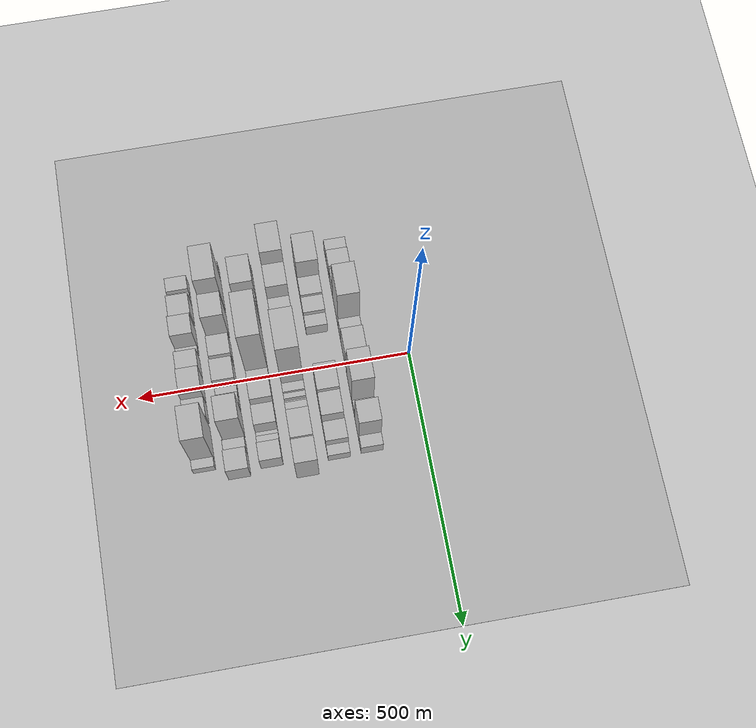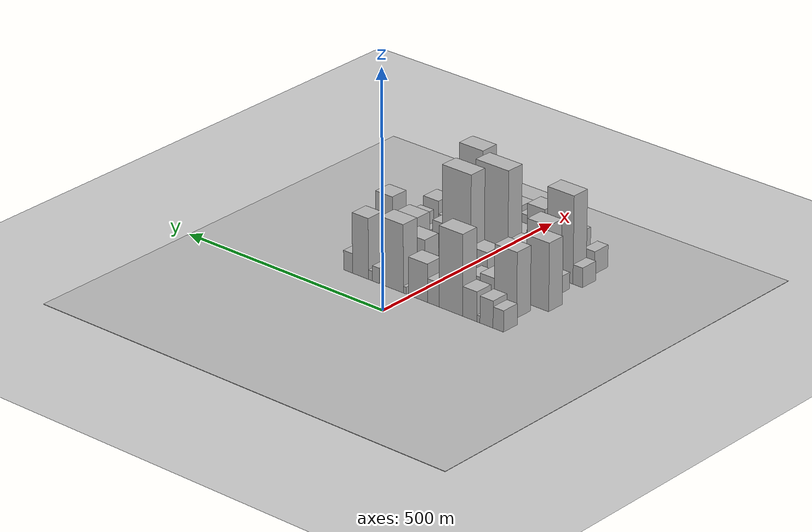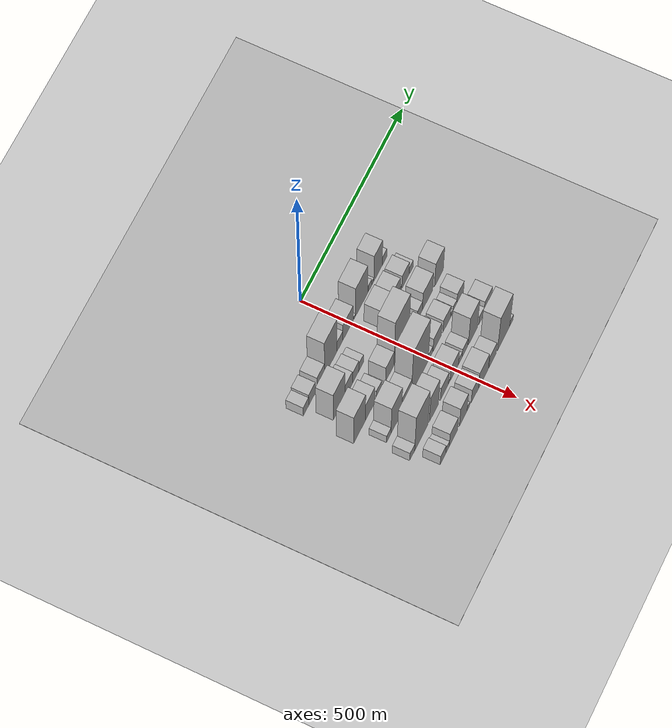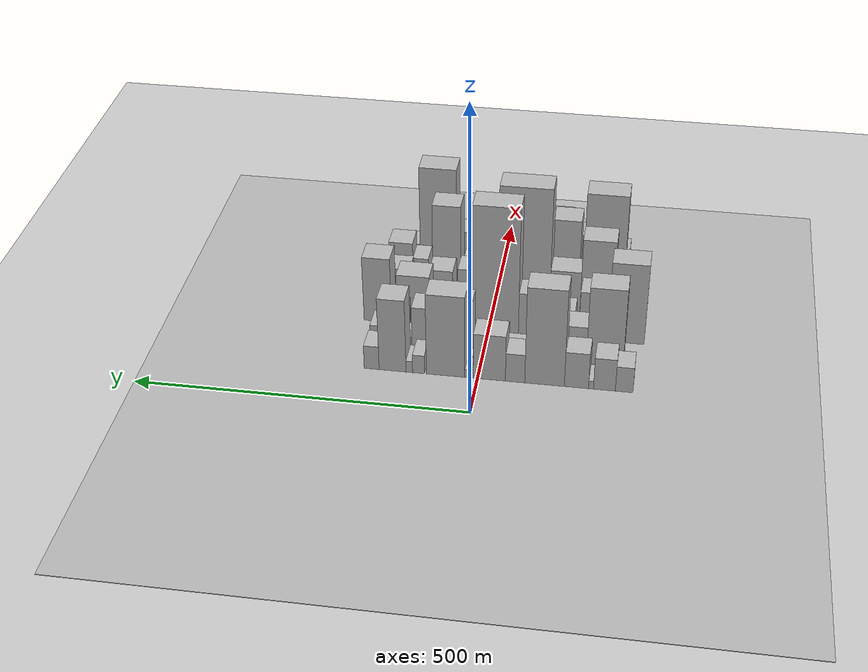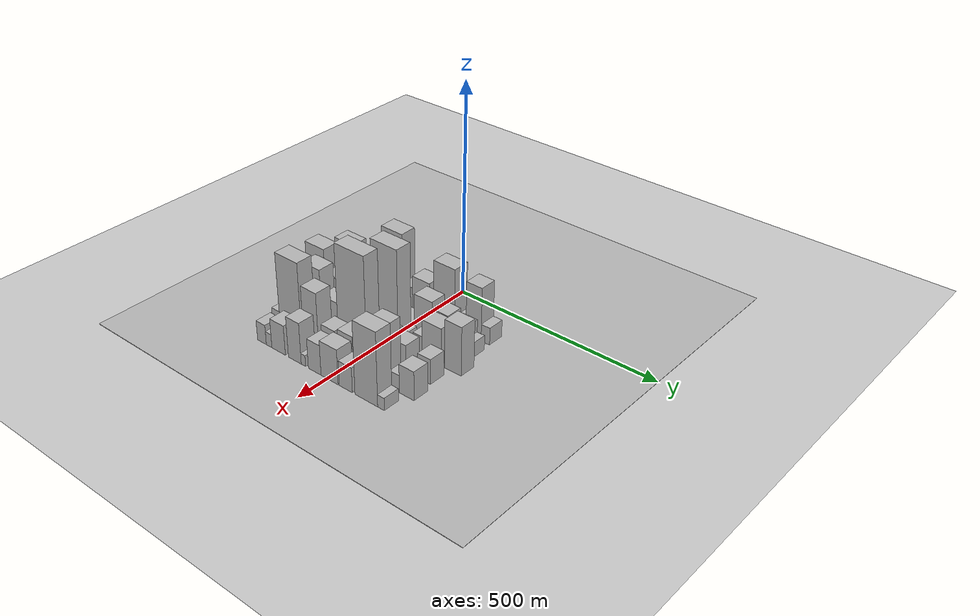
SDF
<sdf version="1.6">
 <world name="default">
  <include><name>ground_plane_1</name><uri>model://HANNAS_ground_plane</uri></include>
  <include>
   <name>ground_plane_2</name>
   <uri>model://HANNAS_ground_plane</uri>
   <pose>100 0 0  0 0 0</pose>
  </include>
  <model name="building_21">
   <static>1</static>
   <pose>100.0000 -216.5910 0 0.000000 0.000000 0.000000</pose>
   <link name="link">
    <pose>0 0 22.50 0 0 0</pose>
    <collision name="collision"><geometry><box><size>40.0000 25.5679 45.0000</size></box></geometry></collision>
    <visual name="visual">
     <cast_shadows>0</cast_shadows>
     <geometry><box><size>40.0000 25.5679 45.0000</size></box></geometry>
     <material>
      <script>
       <uri>model://HANNAS_wall/materials/scripts</uri>
       <uri>model://HANNAS_wall/materials/textures</uri>
       <name>vrc/HANNAS_wall</name>
      </script>
     </material>
    </visual>
   </link>
  </model>
  <model name="building_22">
   <static>1</static>
   <pose>100.0000 -187.7423 0 0.000000 0.000000 0.000000</pose>
   <link name="link">
    <pose>0 0 28.50 0 0 0</pose>
    <collision name="collision"><geometry><box><size>40.0000 32.1295 57.0000</size></box></geometry></collision>
    <visual name="visual">
     <cast_shadows>0</cast_shadows>
     <geometry><box><size>40.0000 32.1295 57.0000</size></box></geometry>
     <material>
      <script>
       <uri>model://HANNAS_wall/materials/scripts</uri>
       <uri>model://HANNAS_wall/materials/textures</uri>
       <name>vrc/HANNAS_wall</name>
      </script>
     </material>
    </visual>
   </link>
  </model>
  <model name="building_23">
   <static>1</static>
   <pose>100.0000 -168.0213 0 0.000000 0.000000 0.000000</pose>
   <link name="link">
    <pose>0 0 7.50 0 0 0</pose>
    <collision name="collision"><geometry><box><size>40.0000 7.3126 15.0000</size></box></geometry></collision>
    <visual name="visual">
     <cast_shadows>0</cast_shadows>
     <geometry><box><size>40.0000 7.3126 15.0000</size></box></geometry>
     <material>
      <script>
       <uri>model://HANNAS_wall/materials/scripts</uri>
       <uri>model://HANNAS_wall/materials/textures</uri>
       <name>vrc/HANNAS_wall</name>
      </script>
     </material>
    </visual>
   </link>
  </model>
  <model name="building_24">
   <static>1</static>
   <pose>100.0000 -146.6382 0 0.000000 0.000000 0.000000</pose>
   <link name="link">
    <pose>0 0 31.50 0 0 0</pose>
    <collision name="collision"><geometry><box><size>40.0000 35.4537 63.0000</size></box></geometry></collision>
    <visual name="visual">
     <cast_shadows>0</cast_shadows>
     <geometry><box><size>40.0000 35.4537 63.0000</size></box></geometry>
     <material>
      <script>
       <uri>model://HANNAS_wall/materials/scripts</uri>
       <uri>model://HANNAS_wall/materials/textures</uri>
       <name>vrc/HANNAS_wall</name>
      </script>
     </material>
    </visual>
   </link>
  </model>
  <model name="building_25">
   <static>1</static>
   <pose>100.0000 -99.6230 0 0.000000 0.000000 0.000000</pose>
   <link name="link">
    <pose>0 0 85.50 0 0 0</pose>
    <collision name="collision"><geometry><box><size>40.0000 58.5766 171.0000</size></box></geometry></collision>
    <visual name="visual">
     <cast_shadows>0</cast_shadows>
     <geometry><box><size>40.0000 58.5766 171.0000</size></box></geometry>
     <material>
      <script>
       <uri>model://HANNAS_wall/materials/scripts</uri>
       <uri>model://HANNAS_wall/materials/textures</uri>
       <name>vrc/HANNAS_wall</name>
      </script>
     </material>
    </visual>
   </link>
  </model>
  <model name="building_26">
   <static>1</static>
   <pose>100.0000 -55.9826 0 0.000000 0.000000 0.000000</pose>
   <link name="link">
    <pose>0 0 25.50 0 0 0</pose>
    <collision name="collision"><geometry><box><size>40.0000 28.7042 51.0000</size></box></geometry></collision>
    <visual name="visual">
     <cast_shadows>0</cast_shadows>
     <geometry><box><size>40.0000 28.7042 51.0000</size></box></geometry>
     <material>
      <script>
       <uri>model://HANNAS_wall/materials/scripts</uri>
       <uri>model://HANNAS_wall/materials/textures</uri>
       <name>vrc/HANNAS_wall</name>
      </script>
     </material>
    </visual>
   </link>
  </model>
  <model name="building_27">
   <static>1</static>
   <pose>100.0000 -17.5608 0 0.000000 0.000000 0.000000</pose>
   <link name="link">
    <pose>0 0 40.50 0 0 0</pose>
    <collision name="collision"><geometry><box><size>40.0000 48.1394 81.0000</size></box></geometry></collision>
    <visual name="visual">
     <cast_shadows>0</cast_shadows>
     <geometry><box><size>40.0000 48.1394 81.0000</size></box></geometry>
     <material>
      <script>
       <uri>model://HANNAS_wall/materials/scripts</uri>
       <uri>model://HANNAS_wall/materials/textures</uri>
       <name>vrc/HANNAS_wall</name>
      </script>
     </material>
    </visual>
   </link>
  </model>
  <model name="building_28">
   <static>1</static>
   <pose>100.0000 15.1734 0 0.000000 0.000000 0.000000</pose>
   <link name="link">
    <pose>0 0 7.50 0 0 0</pose>
    <collision name="collision"><geometry><box><size>40.0000 7.3290 15.0000</size></box></geometry></collision>
    <visual name="visual">
     <cast_shadows>0</cast_shadows>
     <geometry><box><size>40.0000 7.3290 15.0000</size></box></geometry>
     <material>
      <script>
       <uri>model://HANNAS_wall/materials/scripts</uri>
       <uri>model://HANNAS_wall/materials/textures</uri>
       <name>vrc/HANNAS_wall</name>
      </script>
     </material>
    </visual>
   </link>
  </model>
  <model name="building_29">
   <static>1</static>
   <pose>100.0000 47.6236 0 0.000000 0.000000 0.000000</pose>
   <link name="link">
    <pose>0 0 72.00 0 0 0</pose>
    <collision name="collision"><geometry><box><size>40.0000 57.5713 144.0000</size></box></geometry></collision>
    <visual name="visual">
     <cast_shadows>0</cast_shadows>
     <geometry><box><size>40.0000 57.5713 144.0000</size></box></geometry>
     <material>
      <script>
       <uri>model://HANNAS_wall/materials/scripts</uri>
       <uri>model://HANNAS_wall/materials/textures</uri>
       <name>vrc/HANNAS_wall</name>
      </script>
     </material>
    </visual>
   </link>
  </model>
  <model name="building_30">
   <static>1</static>
   <pose>100.0000 88.2830 0 0.000000 0.000000 0.000000</pose>
   <link name="link">
    <pose>0 0 16.50 0 0 0</pose>
    <collision name="collision"><geometry><box><size>40.0000 17.7475 33.0000</size></box></geometry></collision>
    <visual name="visual">
     <cast_shadows>0</cast_shadows>
     <geometry><box><size>40.0000 17.7475 33.0000</size></box></geometry>
     <material>
      <script>
       <uri>model://HANNAS_wall/materials/scripts</uri>
       <uri>model://HANNAS_wall/materials/textures</uri>
       <name>vrc/HANNAS_wall</name>
      </script>
     </material>
    </visual>
   </link>
  </model>
  <model name="building_31">
   <static>1</static>
   <pose>100.0000 102.1519 0 0.000000 0.000000 0.000000</pose>
   <link name="link">
    <pose>0 0 10.50 0 0 0</pose>
    <collision name="collision"><geometry><box><size>40.0000 9.9901 21.0000</size></box></geometry></collision>
    <visual name="visual">
     <cast_shadows>0</cast_shadows>
     <geometry><box><size>40.0000 9.9901 21.0000</size></box></geometry>
     <material>
      <script>
       <uri>model://HANNAS_wall/materials/scripts</uri>
       <uri>model://HANNAS_wall/materials/textures</uri>
       <name>vrc/HANNAS_wall</name>
      </script>
     </material>
    </visual>
   </link>
  </model>
  <model name="building_32">
   <static>1</static>
   <pose>100.0000 127.4909 0 0.000000 0.000000 0.000000</pose>
   <link name="link">
    <pose>0 0 64.50 0 0 0</pose>
    <collision name="collision"><geometry><box><size>40.0000 40.6880 129.0000</size></box></geometry></collision>
    <visual name="visual">
     <cast_shadows>0</cast_shadows>
     <geometry><box><size>40.0000 40.6880 129.0000</size></box></geometry>
     <material>
      <script>
       <uri>model://HANNAS_wall/materials/scripts</uri>
       <uri>model://HANNAS_wall/materials/textures</uri>
       <name>vrc/HANNAS_wall</name>
      </script>
     </material>
    </visual>
   </link>
  </model>
  <model name="building_33">
   <static>1</static>
   <pose>100.0000 159.1408 0 0.000000 0.000000 0.000000</pose>
   <link name="link">
    <pose>0 0 21.00 0 0 0</pose>
    <collision name="collision"><geometry><box><size>40.0000 22.6117 42.0000</size></box></geometry></collision>
    <visual name="visual">
     <cast_shadows>0</cast_shadows>
     <geometry><box><size>40.0000 22.6117 42.0000</size></box></geometry>
     <material>
      <script>
       <uri>model://HANNAS_wall/materials/scripts</uri>
       <uri>model://HANNAS_wall/materials/textures</uri>
       <name>vrc/HANNAS_wall</name>
      </script>
     </material>
    </visual>
   </link>
  </model>
  <model name="building_74">
   <static>1</static>
   <pose>160.0000 -183.5743 0 0.000000 0.000000 0.000000</pose>
   <link name="link">
    <pose>0 0 69.00 0 0 0</pose>
    <collision name="collision"><geometry><box><size>40.0000 55.0241 138.0000</size></box></geometry></collision>
    <visual name="visual">
     <cast_shadows>0</cast_shadows>
     <geometry><box><size>40.0000 55.0241 138.0000</size></box></geometry>
     <material>
      <script>
       <uri>model://HANNAS_wall/materials/scripts</uri>
       <uri>model://HANNAS_wall/materials/textures</uri>
       <name>vrc/HANNAS_wall</name>
      </script>
     </material>
    </visual>
   </link>
  </model>
  <model name="building_75">
   <static>1</static>
   <pose>160.0000 -138.4482 0 0.000000 0.000000 0.000000</pose>
   <link name="link">
    <pose>0 0 33.00 0 0 0</pose>
    <collision name="collision"><geometry><box><size>40.0000 35.2281 66.0000</size></box></geometry></collision>
    <visual name="visual">
     <cast_shadows>0</cast_shadows>
     <geometry><box><size>40.0000 35.2281 66.0000</size></box></geometry>
     <material>
      <script>
       <uri>model://HANNAS_wall/materials/scripts</uri>
       <uri>model://HANNAS_wall/materials/textures</uri>
       <name>vrc/HANNAS_wall</name>
      </script>
     </material>
    </visual>
   </link>
  </model>
  <model name="building_76">
   <static>1</static>
   <pose>160.0000 -105.6804 0 0.000000 0.000000 0.000000</pose>
   <link name="link">
    <pose>0 0 28.50 0 0 0</pose>
    <collision name="collision"><geometry><box><size>40.0000 30.3077 57.0000</size></box></geometry></collision>
    <visual name="visual">
     <cast_shadows>0</cast_shadows>
     <geometry><box><size>40.0000 30.3077 57.0000</size></box></geometry>
     <material>
      <script>
       <uri>model://HANNAS_wall/materials/scripts</uri>
       <uri>model://HANNAS_wall/materials/textures</uri>
       <name>vrc/HANNAS_wall</name>
      </script>
     </material>
    </visual>
   </link>
  </model>
  <model name="building_77">
   <static>1</static>
   <pose>160.0000 -78.9654 0 0.000000 0.000000 0.000000</pose>
   <link name="link">
    <pose>0 0 21.00 0 0 0</pose>
    <collision name="collision"><geometry><box><size>40.0000 23.1223 42.0000</size></box></geometry></collision>
    <visual name="visual">
     <cast_shadows>0</cast_shadows>
     <geometry><box><size>40.0000 23.1223 42.0000</size></box></geometry>
     <material>
      <script>
       <uri>model://HANNAS_wall/materials/scripts</uri>
       <uri>model://HANNAS_wall/materials/textures</uri>
       <name>vrc/HANNAS_wall</name>
      </script>
     </material>
    </visual>
   </link>
  </model>
  <model name="building_78">
   <static>1</static>
   <pose>160.0000 41.7275 0 0.000000 0.000000 0.000000</pose>
   <link name="link">
    <pose>0 0 45.00 0 0 0</pose>
    <collision name="collision"><geometry><box><size>40.0000 48.7545 90.0000</size></box></geometry></collision>
    <visual name="visual">
     <cast_shadows>0</cast_shadows>
     <geometry><box><size>40.0000 48.7545 90.0000</size></box></geometry>
     <material>
      <script>
       <uri>model://HANNAS_wall/materials/scripts</uri>
       <uri>model://HANNAS_wall/materials/textures</uri>
       <name>vrc/HANNAS_wall</name>
      </script>
     </material>
    </visual>
   </link>
  </model>
  <model name="building_79">
   <static>1</static>
   <pose>160.0000 87.4479 0 0.000000 0.000000 0.000000</pose>
   <link name="link">
    <pose>0 0 37.50 0 0 0</pose>
    <collision name="collision"><geometry><box><size>40.0000 42.6863 75.0000</size></box></geometry></collision>
    <visual name="visual">
     <cast_shadows>0</cast_shadows>
     <geometry><box><size>40.0000 42.6863 75.0000</size></box></geometry>
     <material>
      <script>
       <uri>model://HANNAS_wall/materials/scripts</uri>
       <uri>model://HANNAS_wall/materials/textures</uri>
       <name>vrc/HANNAS_wall</name>
      </script>
     </material>
    </visual>
   </link>
  </model>
  <model name="building_80">
   <static>1</static>
   <pose>160.0000 113.0857 0 0.000000 0.000000 0.000000</pose>
   <link name="link">
    <pose>0 0 10.50 0 0 0</pose>
    <collision name="collision"><geometry><box><size>40.0000 8.5893 21.0000</size></box></geometry></collision>
    <visual name="visual">
     <cast_shadows>0</cast_shadows>
     <geometry><box><size>40.0000 8.5893 21.0000</size></box></geometry>
     <material>
      <script>
       <uri>model://HANNAS_wall/materials/scripts</uri>
       <uri>model://HANNAS_wall/materials/textures</uri>
       <name>vrc/HANNAS_wall</name>
      </script>
     </material>
    </visual>
   </link>
  </model>
  <model name="building_81">
   <static>1</static>
   <pose>160.0000 135.3101 0 0.000000 0.000000 0.000000</pose>
   <link name="link">
    <pose>0 0 33.00 0 0 0</pose>
    <collision name="collision"><geometry><box><size>40.0000 35.8595 66.0000</size></box></geometry></collision>
    <visual name="visual">
     <cast_shadows>0</cast_shadows>
     <geometry><box><size>40.0000 35.8595 66.0000</size></box></geometry>
     <material>
      <script>
       <uri>model://HANNAS_wall/materials/scripts</uri>
       <uri>model://HANNAS_wall/materials/textures</uri>
       <name>vrc/HANNAS_wall</name>
      </script>
     </material>
    </visual>
   </link>
  </model>
  <model name="building_82">
   <static>1</static>
   <pose>160.0000 163.0710 0 0.000000 0.000000 0.000000</pose>
   <link name="link">
    <pose>0 0 18.00 0 0 0</pose>
    <collision name="collision"><geometry><box><size>40.0000 19.6621 36.0000</size></box></geometry></collision>
    <visual name="visual">
     <cast_shadows>0</cast_shadows>
     <geometry><box><size>40.0000 19.6621 36.0000</size></box></geometry>
     <material>
      <script>
       <uri>model://HANNAS_wall/materials/scripts</uri>
       <uri>model://HANNAS_wall/materials/textures</uri>
       <name>vrc/HANNAS_wall</name>
      </script>
     </material>
    </visual>
   </link>
  </model>
  <model name="building_129">
   <static>1</static>
   <pose>220.0000 -211.2539 0 0.000000 0.000000 0.000000</pose>
   <link name="link">
    <pose>0 0 72.00 0 0 0</pose>
    <collision name="collision"><geometry><box><size>40.0000 55.6948 144.0000</size></box></geometry></collision>
    <visual name="visual">
     <cast_shadows>0</cast_shadows>
     <geometry><box><size>40.0000 55.6948 144.0000</size></box></geometry>
     <material>
      <script>
       <uri>model://HANNAS_wall/materials/scripts</uri>
       <uri>model://HANNAS_wall/materials/textures</uri>
       <name>vrc/HANNAS_wall</name>
      </script>
     </material>
    </visual>
   </link>
  </model>
  <model name="building_130">
   <static>1</static>
   <pose>220.0000 -161.2773 0 0.000000 0.000000 0.000000</pose>
   <link name="link">
    <pose>0 0 43.50 0 0 0</pose>
    <collision name="collision"><geometry><box><size>40.0000 44.2583 87.0000</size></box></geometry></collision>
    <visual name="visual">
     <cast_shadows>0</cast_shadows>
     <geometry><box><size>40.0000 44.2583 87.0000</size></box></geometry>
     <material>
      <script>
       <uri>model://HANNAS_wall/materials/scripts</uri>
       <uri>model://HANNAS_wall/materials/textures</uri>
       <name>vrc/HANNAS_wall</name>
      </script>
     </material>
    </visual>
   </link>
  </model>
  <model name="building_131">
   <static>1</static>
   <pose>220.0000 -118.8834 0 0.000000 0.000000 0.000000</pose>
   <link name="link">
    <pose>0 0 24.00 0 0 0</pose>
    <collision name="collision"><geometry><box><size>40.0000 26.5295 48.0000</size></box></geometry></collision>
    <visual name="visual">
     <cast_shadows>0</cast_shadows>
     <geometry><box><size>40.0000 26.5295 48.0000</size></box></geometry>
     <material>
      <script>
       <uri>model://HANNAS_wall/materials/scripts</uri>
       <uri>model://HANNAS_wall/materials/textures</uri>
       <name>vrc/HANNAS_wall</name>
      </script>
     </material>
    </visual>
   </link>
  </model>
  <model name="building_132">
   <static>1</static>
   <pose>220.0000 -101.3301 0 0.000000 0.000000 0.000000</pose>
   <link name="link">
    <pose>0 0 10.50 0 0 0</pose>
    <collision name="collision"><geometry><box><size>40.0000 8.5772 21.0000</size></box></geometry></collision>
    <visual name="visual">
     <cast_shadows>0</cast_shadows>
     <geometry><box><size>40.0000 8.5772 21.0000</size></box></geometry>
     <material>
      <script>
       <uri>model://HANNAS_wall/materials/scripts</uri>
       <uri>model://HANNAS_wall/materials/textures</uri>
       <name>vrc/HANNAS_wall</name>
      </script>
     </material>
    </visual>
   </link>
  </model>
  <model name="building_133">
   <static>1</static>
   <pose>220.0000 -66.7412 0 0.000000 0.000000 0.000000</pose>
   <link name="link">
    <pose>0 0 37.50 0 0 0</pose>
    <collision name="collision"><geometry><box><size>40.0000 40.6006 75.0000</size></box></geometry></collision>
    <visual name="visual">
     <cast_shadows>0</cast_shadows>
     <geometry><box><size>40.0000 40.6006 75.0000</size></box></geometry>
     <material>
      <script>
       <uri>model://HANNAS_wall/materials/scripts</uri>
       <uri>model://HANNAS_wall/materials/textures</uri>
       <name>vrc/HANNAS_wall</name>
      </script>
     </material>
    </visual>
   </link>
  </model>
  <model name="building_134">
   <static>1</static>
   <pose>220.0000 -10.5035 0 0.000000 0.000000 0.000000</pose>
   <link name="link">
    <pose>0 0 112.50 0 0 0</pose>
    <collision name="collision"><geometry><box><size>40.0000 71.8747 225.0000</size></box></geometry></collision>
    <visual name="visual">
     <cast_shadows>0</cast_shadows>
     <geometry><box><size>40.0000 71.8747 225.0000</size></box></geometry>
     <material>
      <script>
       <uri>model://HANNAS_wall/materials/scripts</uri>
       <uri>model://HANNAS_wall/materials/textures</uri>
       <name>vrc/HANNAS_wall</name>
      </script>
     </material>
    </visual>
   </link>
  </model>
  <model name="building_135">
   <static>1</static>
   <pose>220.0000 33.8297 0 0.000000 0.000000 0.000000</pose>
   <link name="link">
    <pose>0 0 15.00 0 0 0</pose>
    <collision name="collision"><geometry><box><size>40.0000 16.7918 30.0000</size></box></geometry></collision>
    <visual name="visual">
     <cast_shadows>0</cast_shadows>
     <geometry><box><size>40.0000 16.7918 30.0000</size></box></geometry>
     <material>
      <script>
       <uri>model://HANNAS_wall/materials/scripts</uri>
       <uri>model://HANNAS_wall/materials/textures</uri>
       <name>vrc/HANNAS_wall</name>
      </script>
     </material>
    </visual>
   </link>
  </model>
  <model name="building_136">
   <static>1</static>
   <pose>220.0000 47.3856 0 0.000000 0.000000 0.000000</pose>
   <link name="link">
    <pose>0 0 10.50 0 0 0</pose>
    <collision name="collision"><geometry><box><size>40.0000 10.3199 21.0000</size></box></geometry></collision>
    <visual name="visual">
     <cast_shadows>0</cast_shadows>
     <geometry><box><size>40.0000 10.3199 21.0000</size></box></geometry>
     <material>
      <script>
       <uri>model://HANNAS_wall/materials/scripts</uri>
       <uri>model://HANNAS_wall/materials/textures</uri>
       <name>vrc/HANNAS_wall</name>
      </script>
     </material>
    </visual>
   </link>
  </model>
  <model name="building_137">
   <static>1</static>
   <pose>220.0000 61.5985 0 0.000000 0.000000 0.000000</pose>
   <link name="link">
    <pose>0 0 10.50 0 0 0</pose>
    <collision name="collision"><geometry><box><size>40.0000 10.1059 21.0000</size></box></geometry></collision>
    <visual name="visual">
     <cast_shadows>0</cast_shadows>
     <geometry><box><size>40.0000 10.1059 21.0000</size></box></geometry>
     <material>
      <script>
       <uri>model://HANNAS_wall/materials/scripts</uri>
       <uri>model://HANNAS_wall/materials/textures</uri>
       <name>vrc/HANNAS_wall</name>
      </script>
     </material>
    </visual>
   </link>
  </model>
  <model name="building_138">
   <static>1</static>
   <pose>220.0000 79.0822 0 0.000000 0.000000 0.000000</pose>
   <link name="link">
    <pose>0 0 24.00 0 0 0</pose>
    <collision name="collision"><geometry><box><size>40.0000 24.8615 48.0000</size></box></geometry></collision>
    <visual name="visual">
     <cast_shadows>0</cast_shadows>
     <geometry><box><size>40.0000 24.8615 48.0000</size></box></geometry>
     <material>
      <script>
       <uri>model://HANNAS_wall/materials/scripts</uri>
       <uri>model://HANNAS_wall/materials/textures</uri>
       <name>vrc/HANNAS_wall</name>
      </script>
     </material>
    </visual>
   </link>
  </model>
  <model name="building_139">
   <static>1</static>
   <pose>220.0000 117.0442 0 0.000000 0.000000 0.000000</pose>
   <link name="link">
    <pose>0 0 45.00 0 0 0</pose>
    <collision name="collision"><geometry><box><size>40.0000 51.0625 90.0000</size></box></geometry></collision>
    <visual name="visual">
     <cast_shadows>0</cast_shadows>
     <geometry><box><size>40.0000 51.0625 90.0000</size></box></geometry>
     <material>
      <script>
       <uri>model://HANNAS_wall/materials/scripts</uri>
       <uri>model://HANNAS_wall/materials/textures</uri>
       <name>vrc/HANNAS_wall</name>
      </script>
     </material>
    </visual>
   </link>
  </model>
  <model name="building_140">
   <static>1</static>
   <pose>220.0000 173.1550 0 0.000000 0.000000 0.000000</pose>
   <link name="link">
    <pose>0 0 58.50 0 0 0</pose>
    <collision name="collision"><geometry><box><size>40.0000 43.1591 117.0000</size></box></geometry></collision>
    <visual name="visual">
     <cast_shadows>0</cast_shadows>
     <geometry><box><size>40.0000 43.1591 117.0000</size></box></geometry>
     <material>
      <script>
       <uri>model://HANNAS_wall/materials/scripts</uri>
       <uri>model://HANNAS_wall/materials/textures</uri>
       <name>vrc/HANNAS_wall</name>
      </script>
     </material>
    </visual>
   </link>
  </model>
  <model name="building_183">
   <static>1</static>
   <pose>280.0000 -197.2753 0 0.000000 0.000000 0.000000</pose>
   <link name="link">
    <pose>0 0 18.00 0 0 0</pose>
    <collision name="collision"><geometry><box><size>40.0000 20.8920 36.0000</size></box></geometry></collision>
    <visual name="visual">
     <cast_shadows>0</cast_shadows>
     <geometry><box><size>40.0000 20.8920 36.0000</size></box></geometry>
     <material>
      <script>
       <uri>model://HANNAS_wall/materials/scripts</uri>
       <uri>model://HANNAS_wall/materials/textures</uri>
       <name>vrc/HANNAS_wall</name>
      </script>
     </material>
    </visual>
   </link>
  </model>
  <model name="building_184">
   <static>1</static>
   <pose>280.0000 -161.2078 0 0.000000 0.000000 0.000000</pose>
   <link name="link">
    <pose>0 0 70.50 0 0 0</pose>
    <collision name="collision"><geometry><box><size>40.0000 51.2429 141.0000</size></box></geometry></collision>
    <visual name="visual">
     <cast_shadows>0</cast_shadows>
     <geometry><box><size>40.0000 51.2429 141.0000</size></box></geometry>
     <material>
      <script>
       <uri>model://HANNAS_wall/materials/scripts</uri>
       <uri>model://HANNAS_wall/materials/textures</uri>
       <name>vrc/HANNAS_wall</name>
      </script>
     </material>
    </visual>
   </link>
  </model>
  <model name="building_185">
   <static>1</static>
   <pose>280.0000 -111.8480 0 0.000000 0.000000 0.000000</pose>
   <link name="link">
    <pose>0 0 40.50 0 0 0</pose>
    <collision name="collision"><geometry><box><size>40.0000 47.4767 81.0000</size></box></geometry></collision>
    <visual name="visual">
     <cast_shadows>0</cast_shadows>
     <geometry><box><size>40.0000 47.4767 81.0000</size></box></geometry>
     <material>
      <script>
       <uri>model://HANNAS_wall/materials/scripts</uri>
       <uri>model://HANNAS_wall/materials/textures</uri>
       <name>vrc/HANNAS_wall</name>
      </script>
     </material>
    </visual>
   </link>
  </model>
  <model name="building_186">
   <static>1</static>
   <pose>280.0000 -47.6414 0 0.000000 0.000000 0.000000</pose>
   <link name="link">
    <pose>0 0 112.50 0 0 0</pose>
    <collision name="collision"><geometry><box><size>40.0000 80.9367 225.0000</size></box></geometry></collision>
    <visual name="visual">
     <cast_shadows>0</cast_shadows>
     <geometry><box><size>40.0000 80.9367 225.0000</size></box></geometry>
     <material>
      <script>
       <uri>model://HANNAS_wall/materials/scripts</uri>
       <uri>model://HANNAS_wall/materials/textures</uri>
       <name>vrc/HANNAS_wall</name>
      </script>
     </material>
    </visual>
   </link>
  </model>
  <model name="building_187">
   <static>1</static>
   <pose>280.0000 3.1685 0 0.000000 0.000000 0.000000</pose>
   <link name="link">
    <pose>0 0 18.00 0 0 0</pose>
    <collision name="collision"><geometry><box><size>40.0000 20.6831 36.0000</size></box></geometry></collision>
    <visual name="visual">
     <cast_shadows>0</cast_shadows>
     <geometry><box><size>40.0000 20.6831 36.0000</size></box></geometry>
     <material>
      <script>
       <uri>model://HANNAS_wall/materials/scripts</uri>
       <uri>model://HANNAS_wall/materials/textures</uri>
       <name>vrc/HANNAS_wall</name>
      </script>
     </material>
    </visual>
   </link>
  </model>
  <model name="building_188">
   <static>1</static>
   <pose>280.0000 36.5297 0 0.000000 0.000000 0.000000</pose>
   <link name="link">
    <pose>0 0 34.50 0 0 0</pose>
    <collision name="collision"><geometry><box><size>40.0000 40.0392 69.0000</size></box></geometry></collision>
    <visual name="visual">
     <cast_shadows>0</cast_shadows>
     <geometry><box><size>40.0000 40.0392 69.0000</size></box></geometry>
     <material>
      <script>
       <uri>model://HANNAS_wall/materials/scripts</uri>
       <uri>model://HANNAS_wall/materials/textures</uri>
       <name>vrc/HANNAS_wall</name>
      </script>
     </material>
    </visual>
   </link>
  </model>
  <model name="building_189">
   <static>1</static>
   <pose>280.0000 83.1820 0 0.000000 0.000000 0.000000</pose>
   <link name="link">
    <pose>0 0 31.50 0 0 0</pose>
    <collision name="collision"><geometry><box><size>40.0000 37.2654 63.0000</size></box></geometry></collision>
    <visual name="visual">
     <cast_shadows>0</cast_shadows>
     <geometry><box><size>40.0000 37.2654 63.0000</size></box></geometry>
     <material>
      <script>
       <uri>model://HANNAS_wall/materials/scripts</uri>
       <uri>model://HANNAS_wall/materials/textures</uri>
       <name>vrc/HANNAS_wall</name>
      </script>
     </material>
    </visual>
   </link>
  </model>
  <model name="building_190">
   <static>1</static>
   <pose>280.0000 109.8364 0 0.000000 0.000000 0.000000</pose>
   <link name="link">
    <pose>0 0 10.50 0 0 0</pose>
    <collision name="collision"><geometry><box><size>40.0000 10.0434 21.0000</size></box></geometry></collision>
    <visual name="visual">
     <cast_shadows>0</cast_shadows>
     <geometry><box><size>40.0000 10.0434 21.0000</size></box></geometry>
     <material>
      <script>
       <uri>model://HANNAS_wall/materials/scripts</uri>
       <uri>model://HANNAS_wall/materials/textures</uri>
       <name>vrc/HANNAS_wall</name>
      </script>
     </material>
    </visual>
   </link>
  </model>
  <model name="building_191">
   <static>1</static>
   <pose>280.0000 123.8999 0 0.000000 0.000000 0.000000</pose>
   <link name="link">
    <pose>0 0 16.50 0 0 0</pose>
    <collision name="collision"><geometry><box><size>40.0000 18.0836 33.0000</size></box></geometry></collision>
    <visual name="visual">
     <cast_shadows>0</cast_shadows>
     <geometry><box><size>40.0000 18.0836 33.0000</size></box></geometry>
     <material>
      <script>
       <uri>model://HANNAS_wall/materials/scripts</uri>
       <uri>model://HANNAS_wall/materials/textures</uri>
       <name>vrc/HANNAS_wall</name>
      </script>
     </material>
    </visual>
   </link>
  </model>
  <model name="building_192">
   <static>1</static>
   <pose>280.0000 149.8324 0 0.000000 0.000000 0.000000</pose>
   <link name="link">
    <pose>0 0 30.00 0 0 0</pose>
    <collision name="collision"><geometry><box><size>40.0000 33.7815 60.0000</size></box></geometry></collision>
    <visual name="visual">
     <cast_shadows>0</cast_shadows>
     <geometry><box><size>40.0000 33.7815 60.0000</size></box></geometry>
     <material>
      <script>
       <uri>model://HANNAS_wall/materials/scripts</uri>
       <uri>model://HANNAS_wall/materials/textures</uri>
       <name>vrc/HANNAS_wall</name>
      </script>
     </material>
    </visual>
   </link>
  </model>
  <model name="building_237">
   <static>1</static>
   <pose>340.0000 -211.0326 0 0.000000 0.000000 0.000000</pose>
   <link name="link">
    <pose>0 0 21.00 0 0 0</pose>
    <collision name="collision"><geometry><box><size>40.0000 23.4437 42.0000</size></box></geometry></collision>
    <visual name="visual">
     <cast_shadows>0</cast_shadows>
     <geometry><box><size>40.0000 23.4437 42.0000</size></box></geometry>
     <material>
      <script>
       <uri>model://HANNAS_wall/materials/scripts</uri>
       <uri>model://HANNAS_wall/materials/textures</uri>
       <name>vrc/HANNAS_wall</name>
      </script>
     </material>
    </visual>
   </link>
  </model>
  <model name="building_238">
   <static>1</static>
   <pose>340.0000 -166.9461 0 0.000000 0.000000 0.000000</pose>
   <link name="link">
    <pose>0 0 93.00 0 0 0</pose>
    <collision name="collision"><geometry><box><size>40.0000 64.7293 186.0000</size></box></geometry></collision>
    <visual name="visual">
     <cast_shadows>0</cast_shadows>
     <geometry><box><size>40.0000 64.7293 186.0000</size></box></geometry>
     <material>
      <script>
       <uri>model://HANNAS_wall/materials/scripts</uri>
       <uri>model://HANNAS_wall/materials/textures</uri>
       <name>vrc/HANNAS_wall</name>
      </script>
     </material>
    </visual>
   </link>
  </model>
  <model name="building_239">
   <static>1</static>
   <pose>340.0000 -106.7278 0 0.000000 0.000000 0.000000</pose>
   <link name="link">
    <pose>0 0 67.50 0 0 0</pose>
    <collision name="collision"><geometry><box><size>40.0000 43.7074 135.0000</size></box></geometry></collision>
    <visual name="visual">
     <cast_shadows>0</cast_shadows>
     <geometry><box><size>40.0000 43.7074 135.0000</size></box></geometry>
     <material>
      <script>
       <uri>model://HANNAS_wall/materials/scripts</uri>
       <uri>model://HANNAS_wall/materials/textures</uri>
       <name>vrc/HANNAS_wall</name>
      </script>
     </material>
    </visual>
   </link>
  </model>
  <model name="building_240">
   <static>1</static>
   <pose>340.0000 -55.4258 0 0.000000 0.000000 0.000000</pose>
   <link name="link">
    <pose>0 0 33.00 0 0 0</pose>
    <collision name="collision"><geometry><box><size>40.0000 38.8967 66.0000</size></box></geometry></collision>
    <visual name="visual">
     <cast_shadows>0</cast_shadows>
     <geometry><box><size>40.0000 38.8967 66.0000</size></box></geometry>
     <material>
      <script>
       <uri>model://HANNAS_wall/materials/scripts</uri>
       <uri>model://HANNAS_wall/materials/textures</uri>
       <name>vrc/HANNAS_wall</name>
      </script>
     </material>
    </visual>
   </link>
  </model>
  <model name="building_241">
   <static>1</static>
   <pose>340.0000 -31.6970 0 0.000000 0.000000 0.000000</pose>
   <link name="link">
    <pose>0 0 9.00 0 0 0</pose>
    <collision name="collision"><geometry><box><size>40.0000 8.5608 18.0000</size></box></geometry></collision>
    <visual name="visual">
     <cast_shadows>0</cast_shadows>
     <geometry><box><size>40.0000 8.5608 18.0000</size></box></geometry>
     <material>
      <script>
       <uri>model://HANNAS_wall/materials/scripts</uri>
       <uri>model://HANNAS_wall/materials/textures</uri>
       <name>vrc/HANNAS_wall</name>
      </script>
     </material>
    </visual>
   </link>
  </model>
  <model name="building_242">
   <static>1</static>
   <pose>340.0000 -7.0932 0 0.000000 0.000000 0.000000</pose>
   <link name="link">
    <pose>0 0 37.50 0 0 0</pose>
    <collision name="collision"><geometry><box><size>40.0000 40.6468 75.0000</size></box></geometry></collision>
    <visual name="visual">
     <cast_shadows>0</cast_shadows>
     <geometry><box><size>40.0000 40.6468 75.0000</size></box></geometry>
     <material>
      <script>
       <uri>model://HANNAS_wall/materials/scripts</uri>
       <uri>model://HANNAS_wall/materials/textures</uri>
       <name>vrc/HANNAS_wall</name>
      </script>
     </material>
    </visual>
   </link>
  </model>
  <model name="building_243">
   <static>1</static>
   <pose>340.0000 22.0946 0 0.000000 0.000000 0.000000</pose>
   <link name="link">
    <pose>0 0 15.00 0 0 0</pose>
    <collision name="collision"><geometry><box><size>40.0000 17.7289 30.0000</size></box></geometry></collision>
    <visual name="visual">
     <cast_shadows>0</cast_shadows>
     <geometry><box><size>40.0000 17.7289 30.0000</size></box></geometry>
     <material>
      <script>
       <uri>model://HANNAS_wall/materials/scripts</uri>
       <uri>model://HANNAS_wall/materials/textures</uri>
       <name>vrc/HANNAS_wall</name>
      </script>
     </material>
    </visual>
   </link>
  </model>
  <model name="building_244">
   <static>1</static>
   <pose>340.0000 44.1141 0 0.000000 0.000000 0.000000</pose>
   <link name="link">
    <pose>0 0 22.50 0 0 0</pose>
    <collision name="collision"><geometry><box><size>40.0000 26.3101 45.0000</size></box></geometry></collision>
    <visual name="visual">
     <cast_shadows>0</cast_shadows>
     <geometry><box><size>40.0000 26.3101 45.0000</size></box></geometry>
     <material>
      <script>
       <uri>model://HANNAS_wall/materials/scripts</uri>
       <uri>model://HANNAS_wall/materials/textures</uri>
       <name>vrc/HANNAS_wall</name>
      </script>
     </material>
    </visual>
   </link>
  </model>
  <model name="building_245">
   <static>1</static>
   <pose>340.0000 83.8194 0 0.000000 0.000000 0.000000</pose>
   <link name="link">
    <pose>0 0 72.00 0 0 0</pose>
    <collision name="collision"><geometry><box><size>40.0000 45.1006 144.0000</size></box></geometry></collision>
    <visual name="visual">
     <cast_shadows>0</cast_shadows>
     <geometry><box><size>40.0000 45.1006 144.0000</size></box></geometry>
     <material>
      <script>
       <uri>model://HANNAS_wall/materials/scripts</uri>
       <uri>model://HANNAS_wall/materials/textures</uri>
       <name>vrc/HANNAS_wall</name>
      </script>
     </material>
    </visual>
   </link>
  </model>
  <model name="building_246">
   <static>1</static>
   <pose>340.0000 125.8833 0 0.000000 0.000000 0.000000</pose>
   <link name="link">
    <pose>0 0 21.00 0 0 0</pose>
    <collision name="collision"><geometry><box><size>40.0000 25.0273 42.0000</size></box></geometry></collision>
    <visual name="visual">
     <cast_shadows>0</cast_shadows>
     <geometry><box><size>40.0000 25.0273 42.0000</size></box></geometry>
     <material>
      <script>
       <uri>model://HANNAS_wall/materials/scripts</uri>
       <uri>model://HANNAS_wall/materials/textures</uri>
       <name>vrc/HANNAS_wall</name>
      </script>
     </material>
    </visual>
   </link>
  </model>
  <model name="building_247">
   <static>1</static>
   <pose>340.0000 157.6802 0 0.000000 0.000000 0.000000</pose>
   <link name="link">
    <pose>0 0 34.50 0 0 0</pose>
    <collision name="collision"><geometry><box><size>40.0000 38.5664 69.0000</size></box></geometry></collision>
    <visual name="visual">
     <cast_shadows>0</cast_shadows>
     <geometry><box><size>40.0000 38.5664 69.0000</size></box></geometry>
     <material>
      <script>
       <uri>model://HANNAS_wall/materials/scripts</uri>
       <uri>model://HANNAS_wall/materials/textures</uri>
       <name>vrc/HANNAS_wall</name>
      </script>
     </material>
    </visual>
   </link>
  </model>
  <model name="building_295">
   <static>1</static>
   <pose>400.0000 -190.3556 0 0.000000 0.000000 0.000000</pose>
   <link name="link">
    <pose>0 0 24.00 0 0 0</pose>
    <collision name="collision"><geometry><box><size>40.0000 26.6215 48.0000</size></box></geometry></collision>
    <visual name="visual">
     <cast_shadows>0</cast_shadows>
     <geometry><box><size>40.0000 26.6215 48.0000</size></box></geometry>
     <material>
      <script>
       <uri>model://HANNAS_wall/materials/scripts</uri>
       <uri>model://HANNAS_wall/materials/textures</uri>
       <name>vrc/HANNAS_wall</name>
      </script>
     </material>
    </visual>
   </link>
  </model>
  <model name="building_296">
   <static>1</static>
   <pose>400.0000 -168.6481 0 0.000000 0.000000 0.000000</pose>
   <link name="link">
    <pose>0 0 16.50 0 0 0</pose>
    <collision name="collision"><geometry><box><size>40.0000 16.7935 33.0000</size></box></geometry></collision>
    <visual name="visual">
     <cast_shadows>0</cast_shadows>
     <geometry><box><size>40.0000 16.7935 33.0000</size></box></geometry>
     <material>
      <script>
       <uri>model://HANNAS_wall/materials/scripts</uri>
       <uri>model://HANNAS_wall/materials/textures</uri>
       <name>vrc/HANNAS_wall</name>
      </script>
     </material>
    </visual>
   </link>
  </model>
  <model name="building_297">
   <static>1</static>
   <pose>400.0000 -140.1633 0 0.000000 0.000000 0.000000</pose>
   <link name="link">
    <pose>0 0 36.00 0 0 0</pose>
    <collision name="collision"><geometry><box><size>40.0000 40.1760 72.0000</size></box></geometry></collision>
    <visual name="visual">
     <cast_shadows>0</cast_shadows>
     <geometry><box><size>40.0000 40.1760 72.0000</size></box></geometry>
     <material>
      <script>
       <uri>model://HANNAS_wall/materials/scripts</uri>
       <uri>model://HANNAS_wall/materials/textures</uri>
       <name>vrc/HANNAS_wall</name>
      </script>
     </material>
    </visual>
   </link>
  </model>
  <model name="building_298">
   <static>1</static>
   <pose>400.0000 -92.3280 0 0.000000 0.000000 0.000000</pose>
   <link name="link">
    <pose>0 0 49.50 0 0 0</pose>
    <collision name="collision"><geometry><box><size>40.0000 37.4946 99.0000</size></box></geometry></collision>
    <visual name="visual">
     <cast_shadows>0</cast_shadows>
     <geometry><box><size>40.0000 37.4946 99.0000</size></box></geometry>
     <material>
      <script>
       <uri>model://HANNAS_wall/materials/scripts</uri>
       <uri>model://HANNAS_wall/materials/textures</uri>
       <name>vrc/HANNAS_wall</name>
      </script>
     </material>
    </visual>
   </link>
  </model>
  <model name="building_299">
   <static>1</static>
   <pose>400.0000 -67.3342 0 0.000000 0.000000 0.000000</pose>
   <link name="link">
    <pose>0 0 13.50 0 0 0</pose>
    <collision name="collision"><geometry><box><size>40.0000 12.4929 27.0000</size></box></geometry></collision>
    <visual name="visual">
     <cast_shadows>0</cast_shadows>
     <geometry><box><size>40.0000 12.4929 27.0000</size></box></geometry>
     <material>
      <script>
       <uri>model://HANNAS_wall/materials/scripts</uri>
       <uri>model://HANNAS_wall/materials/textures</uri>
       <name>vrc/HANNAS_wall</name>
      </script>
     </material>
    </visual>
   </link>
  </model>
  <model name="building_300">
   <static>1</static>
   <pose>400.0000 -35.0595 0 0.000000 0.000000 0.000000</pose>
   <link name="link">
    <pose>0 0 36.00 0 0 0</pose>
    <collision name="collision"><geometry><box><size>40.0000 36.0566 72.0000</size></box></geometry></collision>
    <visual name="visual">
     <cast_shadows>0</cast_shadows>
     <geometry><box><size>40.0000 36.0566 72.0000</size></box></geometry>
     <material>
      <script>
       <uri>model://HANNAS_wall/materials/scripts</uri>
       <uri>model://HANNAS_wall/materials/textures</uri>
       <name>vrc/HANNAS_wall</name>
      </script>
     </material>
    </visual>
   </link>
  </model>
  <model name="building_301">
   <static>1</static>
   <pose>400.0000 6.8386 0 0.000000 0.000000 0.000000</pose>
   <link name="link">
    <pose>0 0 42.00 0 0 0</pose>
    <collision name="collision"><geometry><box><size>40.0000 47.7395 84.0000</size></box></geometry></collision>
    <visual name="visual">
     <cast_shadows>0</cast_shadows>
     <geometry><box><size>40.0000 47.7395 84.0000</size></box></geometry>
     <material>
      <script>
       <uri>model://HANNAS_wall/materials/scripts</uri>
       <uri>model://HANNAS_wall/materials/textures</uri>
       <name>vrc/HANNAS_wall</name>
      </script>
     </material>
    </visual>
   </link>
  </model>
  <model name="building_302">
   <static>1</static>
   <pose>400.0000 51.6615 0 0.000000 0.000000 0.000000</pose>
   <link name="link">
    <pose>0 0 30.00 0 0 0</pose>
    <collision name="collision"><geometry><box><size>40.0000 35.9064 60.0000</size></box></geometry></collision>
    <visual name="visual">
     <cast_shadows>0</cast_shadows>
     <geometry><box><size>40.0000 35.9064 60.0000</size></box></geometry>
     <material>
      <script>
       <uri>model://HANNAS_wall/materials/scripts</uri>
       <uri>model://HANNAS_wall/materials/textures</uri>
       <name>vrc/HANNAS_wall</name>
      </script>
     </material>
    </visual>
   </link>
  </model>
  <model name="building_303">
   <static>1</static>
   <pose>400.0000 106.8111 0 0.000000 0.000000 0.000000</pose>
   <link name="link">
    <pose>0 0 87.00 0 0 0</pose>
    <collision name="collision"><geometry><box><size>40.0000 60.3928 174.0000</size></box></geometry></collision>
    <visual name="visual">
     <cast_shadows>0</cast_shadows>
     <geometry><box><size>40.0000 60.3928 174.0000</size></box></geometry>
     <material>
      <script>
       <uri>model://HANNAS_wall/materials/scripts</uri>
       <uri>model://HANNAS_wall/materials/textures</uri>
       <name>vrc/HANNAS_wall</name>
      </script>
     </material>
    </visual>
   </link>
  </model>
  <model name="building_304">
   <static>1</static>
   <pose>400.0000 145.8246 0 0.000000 0.000000 0.000000</pose>
   <link name="link">
    <pose>0 0 15.00 0 0 0</pose>
    <collision name="collision"><geometry><box><size>40.0000 17.6342 30.0000</size></box></geometry></collision>
    <visual name="visual">
     <cast_shadows>0</cast_shadows>
     <geometry><box><size>40.0000 17.6342 30.0000</size></box></geometry>
     <material>
      <script>
       <uri>model://HANNAS_wall/materials/scripts</uri>
       <uri>model://HANNAS_wall/materials/textures</uri>
       <name>vrc/HANNAS_wall</name>
      </script>
     </material>
    </visual>
   </link>
  </model>
 </world>
</sdf>
